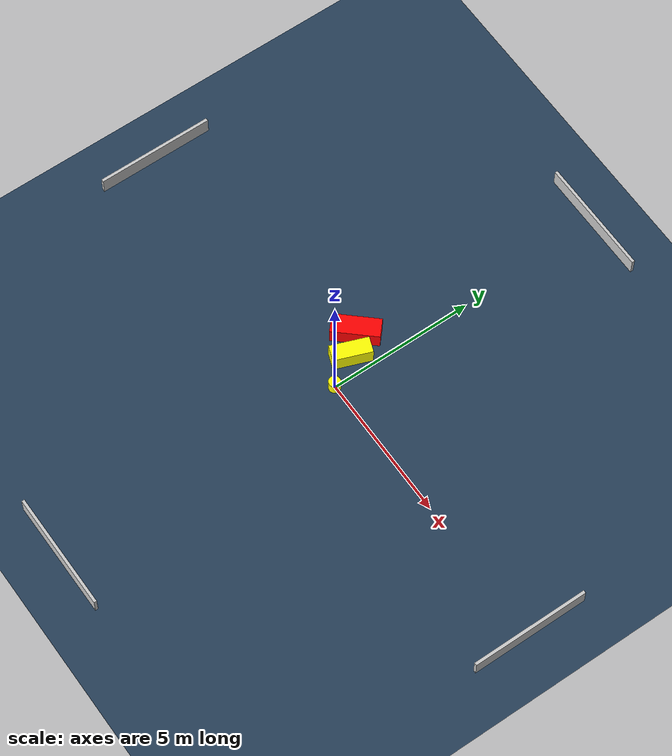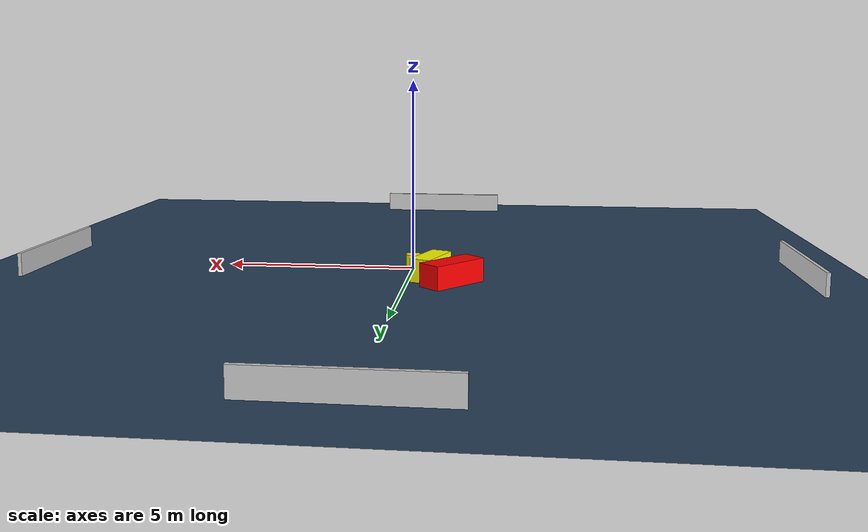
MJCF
<?xml version="1.0" ?>
<mujoco model="generated_environment">
  <option timestep="0.01" integrator="RK4" cone="elliptic"/>
  <default>
    <geom density="1"/>
  </default>
  <asset>
    <texture builtin="gradient" height="3072" name="skybox" rgb1="0.3 0.5 0.7" rgb2="0 0 0" type="skybox" width="512"/>
    <texture builtin="checker" height="300" name="groundplane" rgb1="0.2 0.3 0.4" rgb2="0.1 0.2 0.3" type="2d" width="300"/>
    <material name="groundplane" reflectance="0.2" texrepeat="5 5" texture="groundplane"/>
  </asset>
  <worldbody>
    <light dir="0 0 -1" directional="true" pos="0 0 1.5"/>
    <geom condim="3" friction="0.5 0.005 0.001" material="groundplane" name="floor" pos="0 0 0" size="0 0 0.05" type="plane"/>
    <body name="walls">
      <geom name="wall_1" condim="4" pos="-10.0 0.0 0.3" rgba="0.800000011920929 0.800000011920929 0.800000011920929 1.0" size="0.05 2.0 0.3" type="box"/>
      <geom name="wall_2" condim="4" pos="10.0 0.0 0.3" rgba="0.800000011920929 0.800000011920929 0.800000011920929 1.0" size="0.05 2.0 0.3" type="box"/>
      <geom name="wall_3" condim="4" pos="0.0 -10.0 0.3" rgba="0.800000011920929 0.800000011920929 0.800000011920929 1.0" size="2.0 0.05 0.3" type="box"/>
      <geom name="wall_4" condim="4" pos="0.0 10.0 0.3" rgba="0.800000011920929 0.800000011920929 0.800000011920929 1.0" size="2.0 0.05 0.3" type="box"/>
    </body>
    <body name="robot">
      <joint name="joint_x" type="slide" pos="0 0 0" axis="1 0 0"/>
      <joint name="joint_y" type="slide" pos="0 0 0" axis="0 1 0"/>
      <geom name="robot" type="cylinder" pos="0.0 0.0 0.2" size="0.2 0.2 0.0" mass="5.0" friction="1.0 0.005 0.0001" condim="4" rgba="1.0 1.0 0.0 1.0"/>
    </body>
    <body name="obstacle_1_movable">
      <geom name="obstacle_1_movable" condim="4" pos="-0.5575162221250362 1.0046221736438672 0.3" euler="0 0 69.31694010766222" friction="0.0 0.005 0.001" rgba="1.0 1.0 0.0 1.0" size="0.6507095395278182 0.2694623326098707 0.3" type="box" mass="0.1"/>
      <joint type="free"/>
    </body>
    <body name="obstacle_2_static">
      <geom name="obstacle_2_static" condim="4" pos="-1.1407110021589206 1.6029806929449952 0.3" euler="0 0 317.9812993098383" friction="0.0 0.005 0.001" rgba="1.0 0.0 0.0 1.0" size="0.3205585253479051 0.7935270002448862 0.3" type="box"/>
    </body>
  </worldbody>
  <actuator>
    <motor name="actuator_x" joint="joint_x" gear="1" ctrlrange="-1 1"/>
    <motor name="actuator_y" joint="joint_y" gear="1" ctrlrange="-1 1"/>
  </actuator>
</mujoco>
